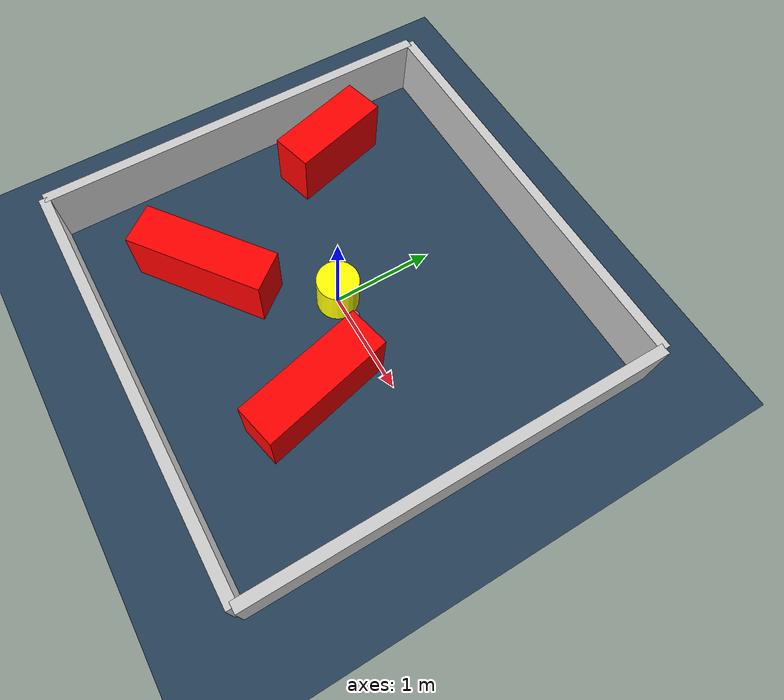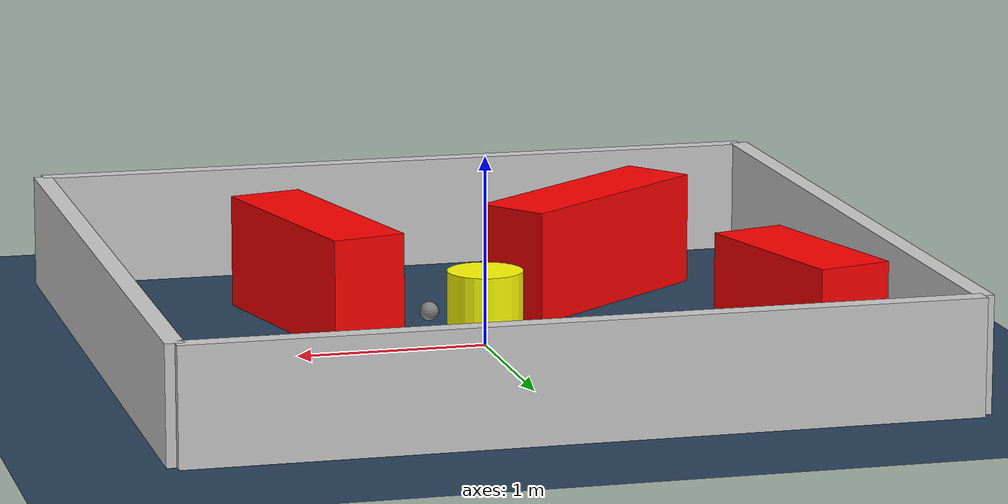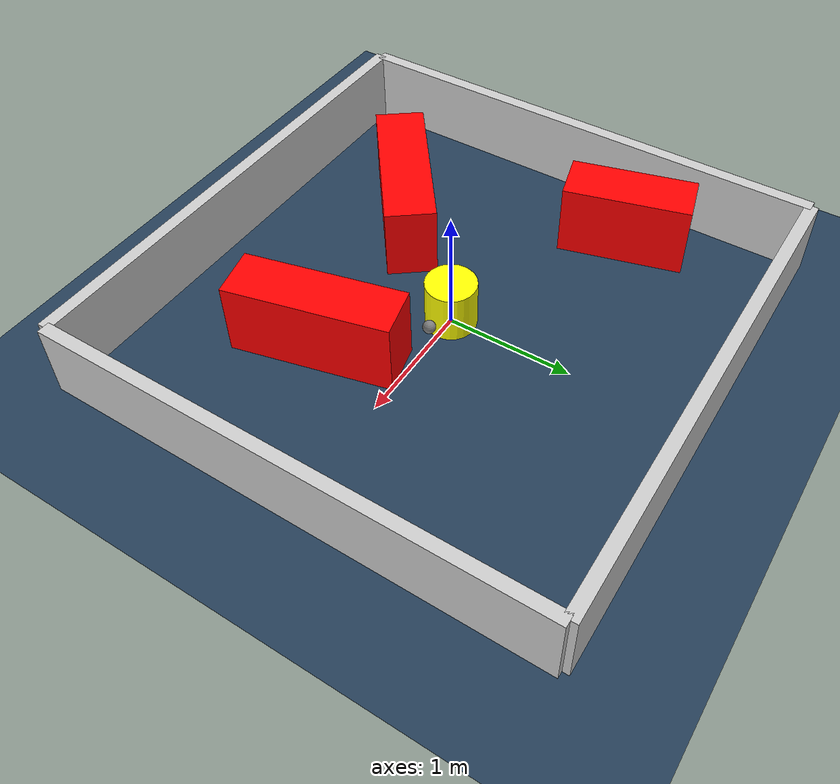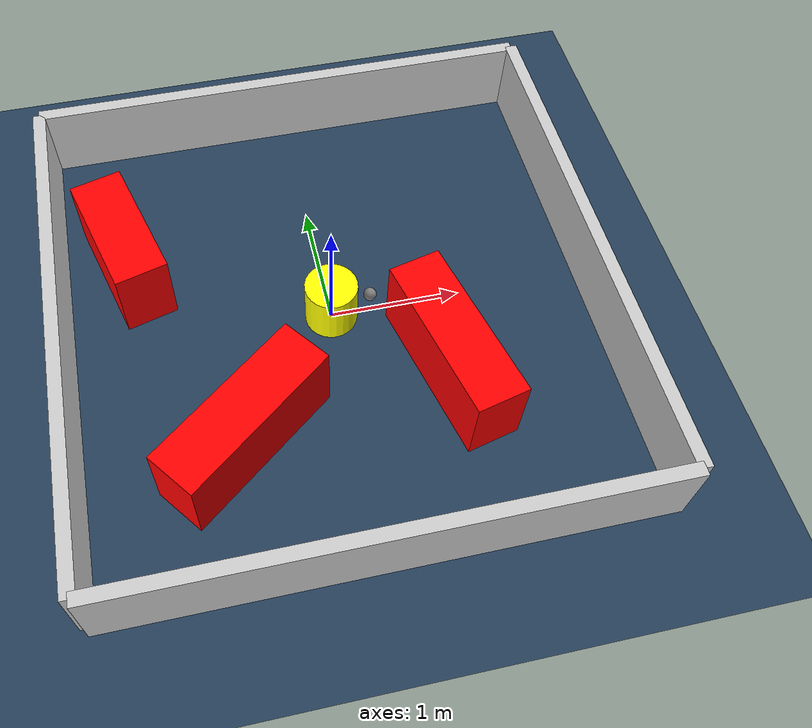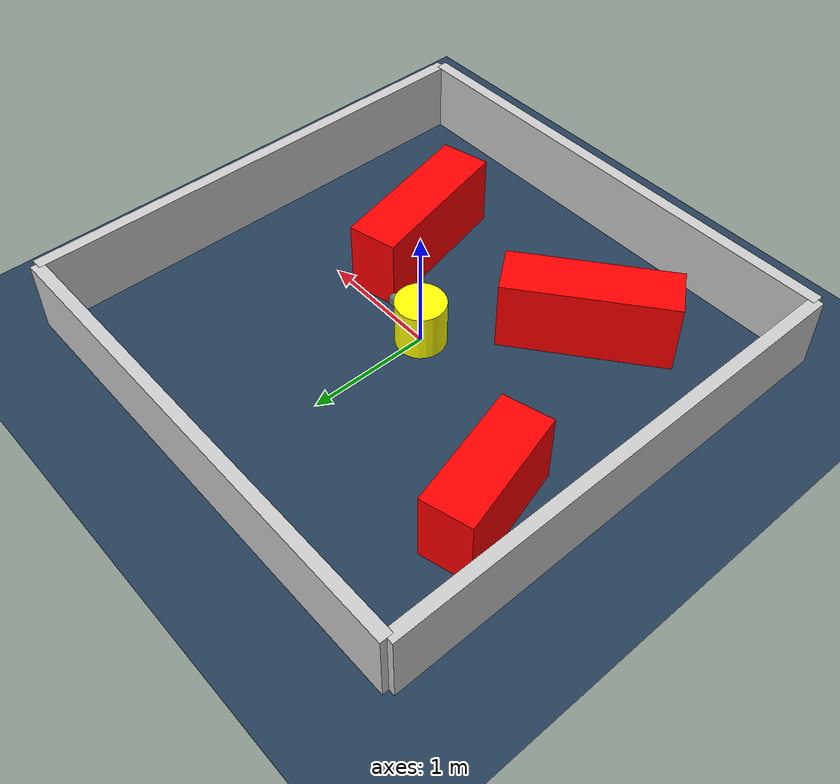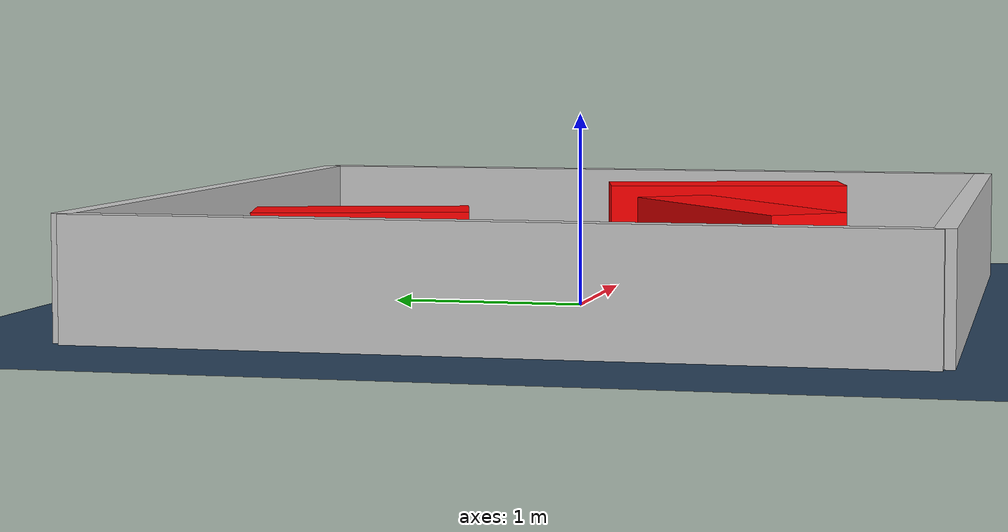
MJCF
<?xml version="1.0" ?>
<mujoco model="generated_environment">
  <option timestep="0.01" integrator="RK4" cone="elliptic"/>
  <default>
    <geom density="1"/>
  </default>
  <asset>
    <texture builtin="gradient" height="3072" rgb1="0.3 0.5 0.7" rgb2="0 0 0" type="skybox" width="512"/>
    <texture builtin="checker" height="300" mark="edge" markrgb="0.8 0.8 0.8" name="groundplane" rgb1="0.2 0.3 0.4" rgb2="0.1 0.2 0.3" type="2d" width="300"/>
    <material name="groundplane" reflectance="0.2" texrepeat="5 5" texture="groundplane" texuniform="true"/>
    <material name="robot" rgba="0.0 1.0 0.0 1"/>
  </asset>
  <worldbody>
    <light dir="0 0 -1" directional="true" pos="0 0 1.5"/>
    <geom condim="4" friction="1.0 0.005 0.001" material="groundplane" name="floor" size="0 0 0.05" type="plane"/>
    <body name="walls">
      <geom name="wall_1" condim="4" pos="-2.0 0.0 0.3" rgba="0.800000011920929 0.800000011920929 0.800000011920929 1.0" size="0.05 2.0 0.3" type="box"/>
      <geom name="wall_2" condim="4" pos="2.0 0.0 0.3" rgba="0.800000011920929 0.800000011920929 0.800000011920929 1.0" size="0.05 2.0 0.3" type="box"/>
      <geom name="wall_3" condim="4" pos="0.0 -2.0 0.3" rgba="0.800000011920929 0.800000011920929 0.800000011920929 1.0" size="2.0 0.05 0.3" type="box"/>
      <geom name="wall_4" condim="4" pos="0.0 2.0 0.3" rgba="0.800000011920929 0.800000011920929 0.800000011920929 1.0" size="2.0 0.05 0.3" type="box"/>
    </body>
    <body name="robot">
      <joint name="joint_x" type="slide" pos="0 0 0" axis="1 0 0"/>
      <joint name="joint_y" type="slide" pos="0 0 0" axis="0 1 0"/>
      <geom name="robot" type="sphere" pos="0.3 0.0 0.2" size="0.05" mass="5." friction="1.0 0.005 0.0001" condim="4" rgba="0.5 0.5 0.5 1.0"/>
      <site name="sensor_ball"/>
    </body>
    <body name="obstacle_movable_1">
      <geom name="obstacle_movable_1" condim="4" pos="0.0 0.0 0.2" euler="0 0 0.0" friction="1.0 0.005 0.001" rgba="1.0 1.0 0.0 1.0" size="0.2 0.2 0.0" type="cylinder" mass="0.1"/>
      <joint type="free"/>
    </body>
    <body name="obstacle_2_static">
      <geom name="obstacle_2_static" condim="4" pos="-1.475304126638221 0.7298512527306016 0.3" euler="0 0 285.2530906950382" friction="1.0 0.005 0.001" rgba="1 0 0 1" size="0.5010779191217576 0.2 0.3" type="box"/>
    </body>
    <body name="obstacle_3_static">
      <geom name="obstacle_3_static" condim="4" pos="0.7543055611297336 -0.6578759051671859 0.3" euler="0 0 283.4353158378982" friction="1.0 0.005 0.001" rgba="1 0 0 1" size="0.6380881328583661 0.2 0.3" type="box"/>
    </body>
    <body name="obstacle_4_static">
      <geom name="obstacle_4_static" condim="4" pos="-0.8083178742511996 -0.9459213332329162 0.3" euler="0 0 217.74923200073007" friction="1.0 0.005 0.001" rgba="1 0 0 1" size="0.6621343815329237 0.2 0.3" type="box"/>
    </body>
  </worldbody>
  <actuator>
    <motor name="actuator_x" joint="joint_x" gear="1" ctrlrange="-1 1"/>
    <motor name="actuator_y" joint="joint_y" gear="1" ctrlrange="-1 1"/>
  </actuator>
</mujoco>
